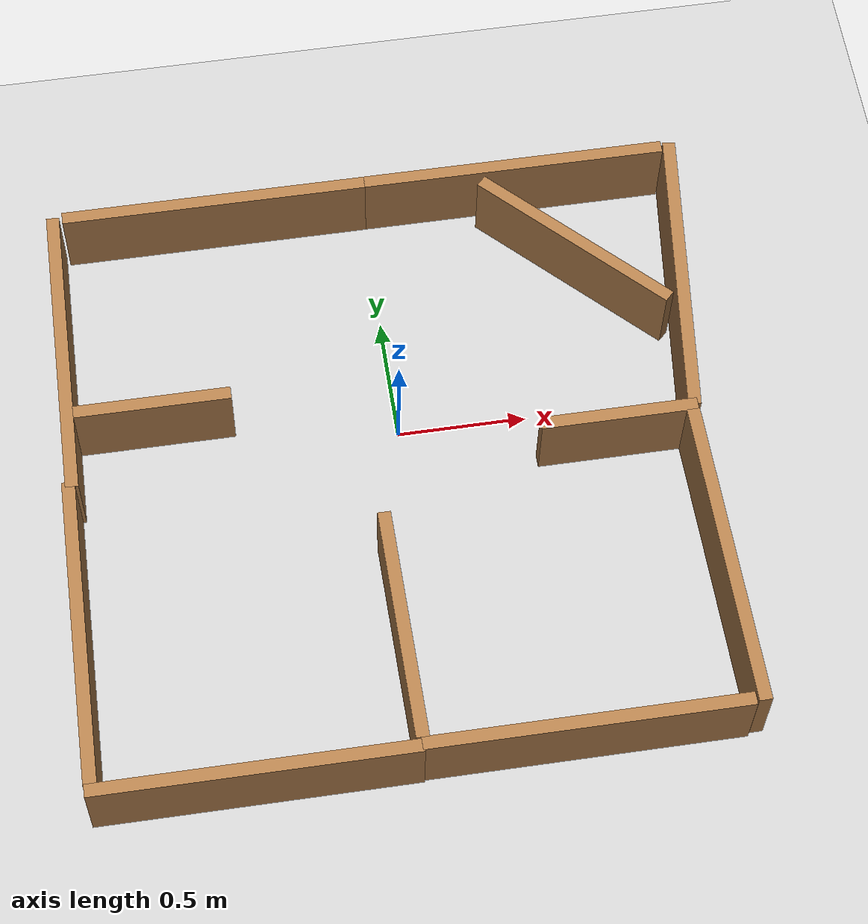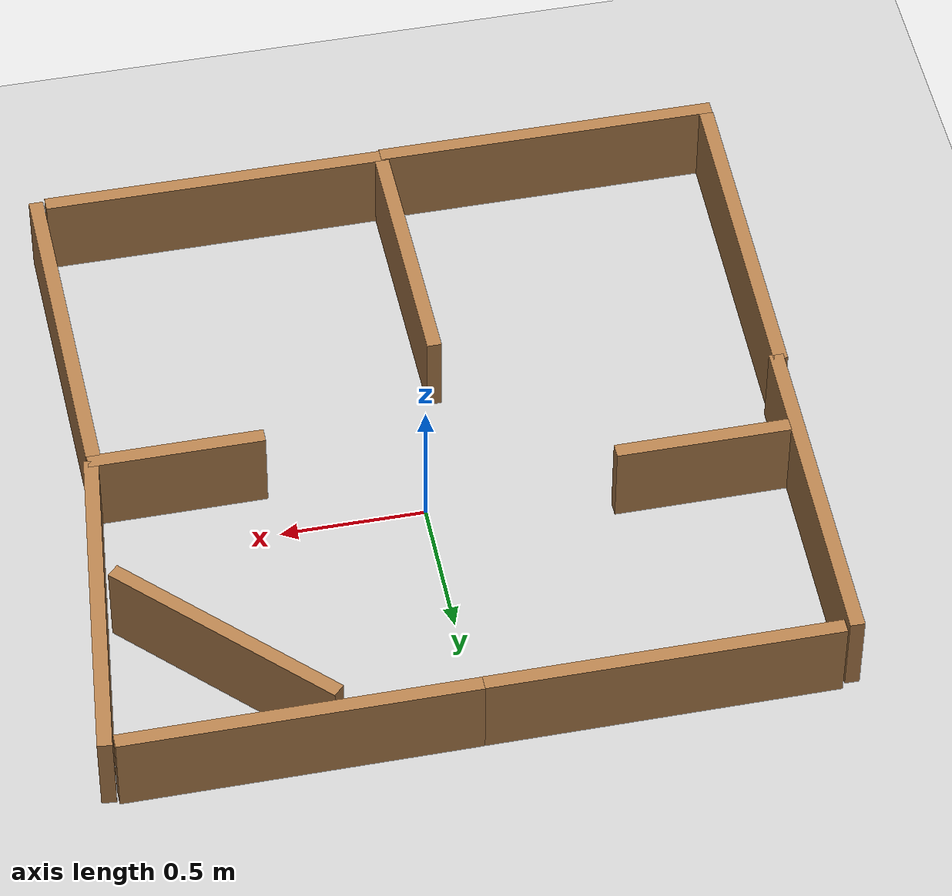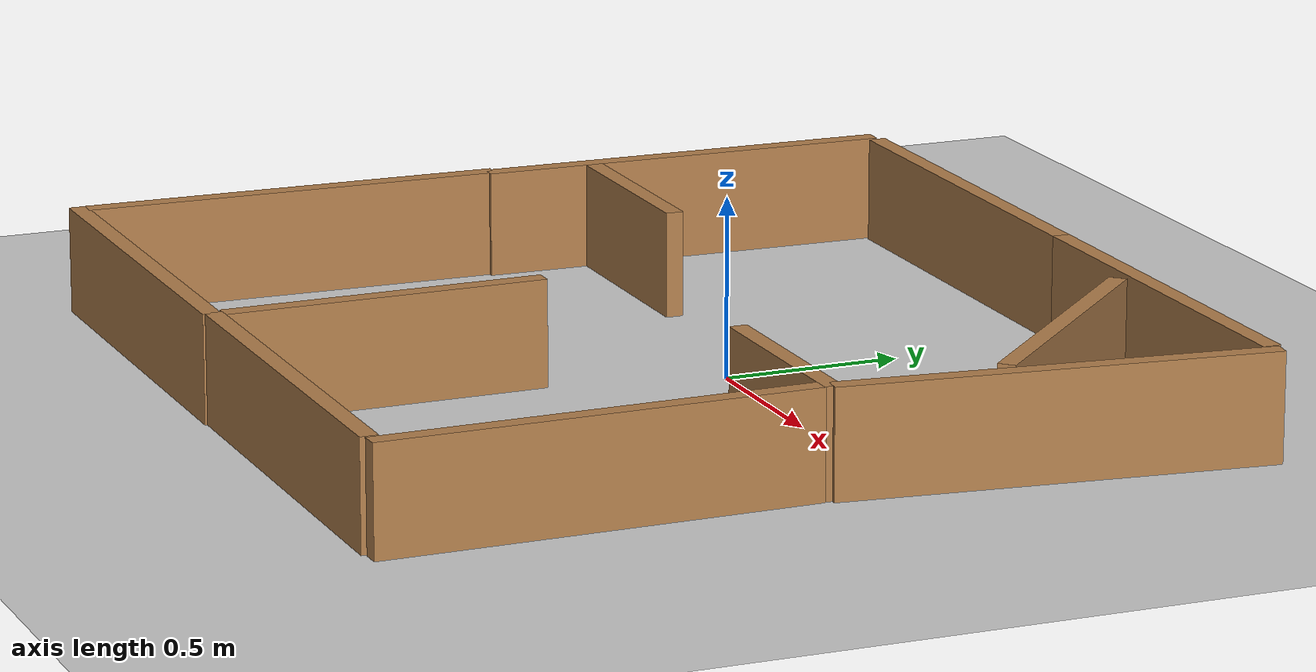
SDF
<sdf version="1.7">
 <world name="default">
  <light name="sun" type="directional">
   <pose>0 0 10 0 -0 0</pose>
   <diffuse>0.8 0.8 0.8 1</diffuse>
   <specular>0.2 0.2 0.2 1</specular>
   <attenuation>
    <range>1000</range>
    <constant>0.9</constant>
    <linear>0.01</linear>
    <quadratic>0.001</quadratic>
   </attenuation>
   <direction>-0.5 0.1 -0.9</direction>
   <spot><inner_angle>0</inner_angle><outer_angle>0</outer_angle><falloff>0</falloff></spot>
  </light>
  <model name="ground_plane">
   <static>1</static>
   <link name="link">
    <collision name="collision">
     <geometry><plane><normal>0 0 1</normal><size>100 100</size></plane></geometry>
     <surface>
      <contact><collide_bitmask>65535</collide_bitmask></contact>
      <friction><ode><mu>100</mu><mu2>50</mu2></ode></friction>
     </surface>
    </collision>
    <visual name="visual">
     <cast_shadows>0</cast_shadows>
     <geometry><plane><normal>0 0 1</normal><size>100 100</size></plane></geometry>
     <material>
      <script><uri>file://media/materials/scripts/gazebo.material</uri><name>Gazebo/Grey</name></script>
     </material>
    </visual>
   </link>
  </model>
  <gravity>0 0 -9.8</gravity>
  <magnetic_field>6e-06 2.3e-05 -4.2e-05</magnetic_field>
  <atmosphere type="adiabatic"/>
  <physics type="ode">
   <max_step_size>0.001</max_step_size>
   <real_time_factor>1</real_time_factor>
   <real_time_update_rate>1000</real_time_update_rate>
  </physics>
  <scene><ambient>0.4 0.4 0.4 1</ambient><background>0.7 0.7 0.7 1</background><shadows>1</shadows></scene>
  <spherical_coordinates>
   <surface_model>EARTH_WGS84</surface_model>
   <latitude_deg>0</latitude_deg>
   <longitude_deg>0</longitude_deg>
   <elevation>0</elevation>
   <heading_deg>0</heading_deg>
  </spherical_coordinates>
  <model name="wall120cm">
   <pose>0.606134 0.989988 0 0 -0 0</pose>
   <link name="Wall_11">
    <collision name="Wall_11_Collision">
     <geometry><box><size>1.2 0.05 0.3</size></box></geometry>
     <pose>0 0 0.15 0 -0 0</pose>
    </collision>
    <visual name="Wall_11_Visual">
     <pose>0 0 0.15 0 -0 0</pose>
     <geometry><box><size>1.2 0.05 0.3</size></box></geometry>
     <material>
      <script><uri>file://media/materials/scripts/gazebo.material</uri><name>Gazebo/Wood</name></script>
      <ambient>1 1 1 1</ambient>
     </material>
     <meta><layer>0</layer></meta>
    </visual>
   </link>
   <static>1</static>
  </model>
  <model name="wall120cm_0">
   <pose>-0.59249 0.989459 0 0 -0 0</pose>
   <link name="Wall_11">
    <collision name="Wall_11_Collision">
     <geometry><box><size>1.2 0.05 0.3</size></box></geometry>
     <pose>0 0 0.15 0 -0 0</pose>
    </collision>
    <visual name="Wall_11_Visual">
     <pose>0 0 0.15 0 -0 0</pose>
     <geometry><box><size>1.2 0.05 0.3</size></box></geometry>
     <material>
      <script><uri>file://media/materials/scripts/gazebo.material</uri><name>Gazebo/Wood</name></script>
      <ambient>1 1 1 1</ambient>
     </material>
     <meta><layer>0</layer></meta>
    </visual>
   </link>
   <static>1</static>
  </model>
  <model name="wall120cm_1">
   <pose>-1.24267 0.39506 0 0 0 -1.59286</pose>
   <link name="Wall_11">
    <collision name="Wall_11_Collision">
     <geometry><box><size>1.2 0.05 0.3</size></box></geometry>
     <pose>0 0 0.15 0 -0 0</pose>
    </collision>
    <visual name="Wall_11_Visual">
     <pose>0 0 0.15 0 -0 0</pose>
     <geometry><box><size>1.2 0.05 0.3</size></box></geometry>
     <material>
      <script><uri>file://media/materials/scripts/gazebo.material</uri><name>Gazebo/Wood</name></script>
      <ambient>1 1 1 1</ambient>
     </material>
     <meta><layer>0</layer></meta>
    </visual>
   </link>
   <static>1</static>
  </model>
  <model name="wall120cm_2">
   <pose>-1.28082 -0.784595 0 0 0 -1.59231</pose>
   <link name="Wall_11">
    <collision name="Wall_11_Collision">
     <geometry><box><size>1.2 0.05 0.3</size></box></geometry>
     <pose>0 0 0.15 0 -0 0</pose>
    </collision>
    <visual name="Wall_11_Visual">
     <pose>0 0 0.15 0 -0 0</pose>
     <geometry><box><size>1.2 0.05 0.3</size></box></geometry>
     <material>
      <script><uri>file://media/materials/scripts/gazebo.material</uri><name>Gazebo/Wood</name></script>
      <ambient>1 1 1 1</ambient>
     </material>
     <meta><layer>0</layer></meta>
    </visual>
   </link>
   <static>1</static>
  </model>
  <model name="wall120cm_3">
   <pose>-0.716418 -1.40517 0 0 -0 0</pose>
   <link name="Wall_11">
    <collision name="Wall_11_Collision">
     <geometry><box><size>1.2 0.05 0.3</size></box></geometry>
     <pose>0 0 0.15 0 -0 0</pose>
    </collision>
    <visual name="Wall_11_Visual">
     <pose>0 0 0.15 0 -0 0</pose>
     <geometry><box><size>1.2 0.05 0.3</size></box></geometry>
     <material>
      <script><uri>file://media/materials/scripts/gazebo.material</uri><name>Gazebo/Wood</name></script>
      <ambient>1 1 1 1</ambient>
     </material>
     <meta><layer>0</layer></meta>
    </visual>
   </link>
   <static>1</static>
  </model>
  <model name="wall120cm_4">
   <pose>0.476156 -1.39883 0 0 -0 0</pose>
   <link name="Wall_11">
    <collision name="Wall_11_Collision">
     <geometry><box><size>1.2 0.05 0.3</size></box></geometry>
     <pose>0 0 0.15 0 -0 0</pose>
    </collision>
    <visual name="Wall_11_Visual">
     <pose>0 0 0.15 0 -0 0</pose>
     <geometry><box><size>1.2 0.05 0.3</size></box></geometry>
     <material>
      <script><uri>file://media/materials/scripts/gazebo.material</uri><name>Gazebo/Wood</name></script>
      <ambient>1 1 1 1</ambient>
     </material>
     <meta><layer>0</layer></meta>
    </visual>
   </link>
   <static>1</static>
  </model>
  <model name="wall120cm_5">
   <pose>1.09946 -0.811337 0 0 -0 1.58596</pose>
   <link name="Wall_11">
    <collision name="Wall_11_Collision">
     <geometry><box><size>1.2 0.05 0.3</size></box></geometry>
     <pose>0 0 0.15 0 -0 0</pose>
    </collision>
    <visual name="Wall_11_Visual">
     <pose>0 0 0.15 0 -0 0</pose>
     <geometry><box><size>1.2 0.05 0.3</size></box></geometry>
     <material>
      <script><uri>file://media/materials/scripts/gazebo.material</uri><name>Gazebo/Wood</name></script>
      <ambient>1 1 1 1</ambient>
     </material>
     <meta><layer>0</layer></meta>
    </visual>
   </link>
   <static>1</static>
  </model>
  <model name="wall120cm_6">
   <pose>1.16966 0.406313 0 0 0 -1.68583</pose>
   <link name="Wall_11">
    <collision name="Wall_11_Collision">
     <geometry><box><size>1.2 0.05 0.3</size></box></geometry>
     <pose>0 0 0.15 0 -0 0</pose>
    </collision>
    <visual name="Wall_11_Visual">
     <pose>0 0 0.15 0 -0 0</pose>
     <geometry><box><size>1.2 0.05 0.3</size></box></geometry>
     <material>
      <script><uri>file://media/materials/scripts/gazebo.material</uri><name>Gazebo/Wood</name></script>
      <ambient>1 1 1 1</ambient>
     </material>
     <meta><layer>0</layer></meta>
    </visual>
   </link>
   <static>1</static>
  </model>
  <model name="wall60cm">
   <pose>-0.925359 0.110504 0 0 -0 0</pose>
   <link name="Wall_4">
    <collision name="Wall_4_Collision">
     <geometry><box><size>0.6 0.05 0.3</size></box></geometry>
     <pose>0 0 0.15 0 -0 0</pose>
    </collision>
    <visual name="Wall_4_Visual">
     <pose>0 0 0.15 0 -0 0</pose>
     <geometry><box><size>0.6 0.05 0.3</size></box></geometry>
     <material>
      <script><uri>file://media/materials/scripts/gazebo.material</uri><name>Gazebo/Wood</name></script>
      <ambient>1 1 1 1</ambient>
     </material>
     <meta><layer>0</layer></meta>
    </visual>
   </link>
   <static>1</static>
  </model>
  <model name="wall60cm_0">
   <pose>0.812477 -0.189716 0 0 -0 0</pose>
   <link name="Wall_4">
    <collision name="Wall_4_Collision">
     <geometry><box><size>0.6 0.05 0.3</size></box></geometry>
     <pose>0 0 0.15 0 -0 0</pose>
    </collision>
    <visual name="Wall_4_Visual">
     <pose>0 0 0.15 0 -0 0</pose>
     <geometry><box><size>0.6 0.05 0.3</size></box></geometry>
     <material>
      <script><uri>file://media/materials/scripts/gazebo.material</uri><name>Gazebo/Wood</name></script>
      <ambient>1 1 1 1</ambient>
     </material>
     <meta><layer>0</layer></meta>
    </visual>
   </link>
   <static>1</static>
  </model>
  <model name="wall90cm">
   <pose>-0.121626 -0.925787 0 0 0 -1.56168</pose>
   <link name="Wall_6">
    <collision name="Wall_6_Collision">
     <geometry><box><size>0.9 0.05 0.3</size></box></geometry>
     <pose>0 0 0.15 0 -0 0</pose>
    </collision>
    <visual name="Wall_6_Visual">
     <pose>0 0 0.15 0 -0 0</pose>
     <geometry><box><size>0.9 0.05 0.3</size></box></geometry>
     <material>
      <script><uri>file://media/materials/scripts/gazebo.material</uri><name>Gazebo/Wood</name></script>
      <ambient>1 1 1 1</ambient>
     </material>
     <meta><layer>0</layer></meta>
    </visual>
   </link>
   <static>1</static>
  </model>
  <model name="wall90cm_0">
   <pose>0.784771 0.61068 0 0 0 -0.787876</pose>
   <link name="Wall_6">
    <collision name="Wall_6_Collision">
     <geometry><box><size>0.9 0.05 0.3</size></box></geometry>
     <pose>0 0 0.15 0 -0 0</pose>
    </collision>
    <visual name="Wall_6_Visual">
     <pose>0 0 0.15 0 -0 0</pose>
     <geometry><box><size>0.9 0.05 0.3</size></box></geometry>
     <material>
      <script><uri>file://media/materials/scripts/gazebo.material</uri><name>Gazebo/Wood</name></script>
      <ambient>1 1 1 1</ambient>
     </material>
     <meta><layer>0</layer></meta>
    </visual>
   </link>
   <static>1</static>
  </model>
 </world>
</sdf>
